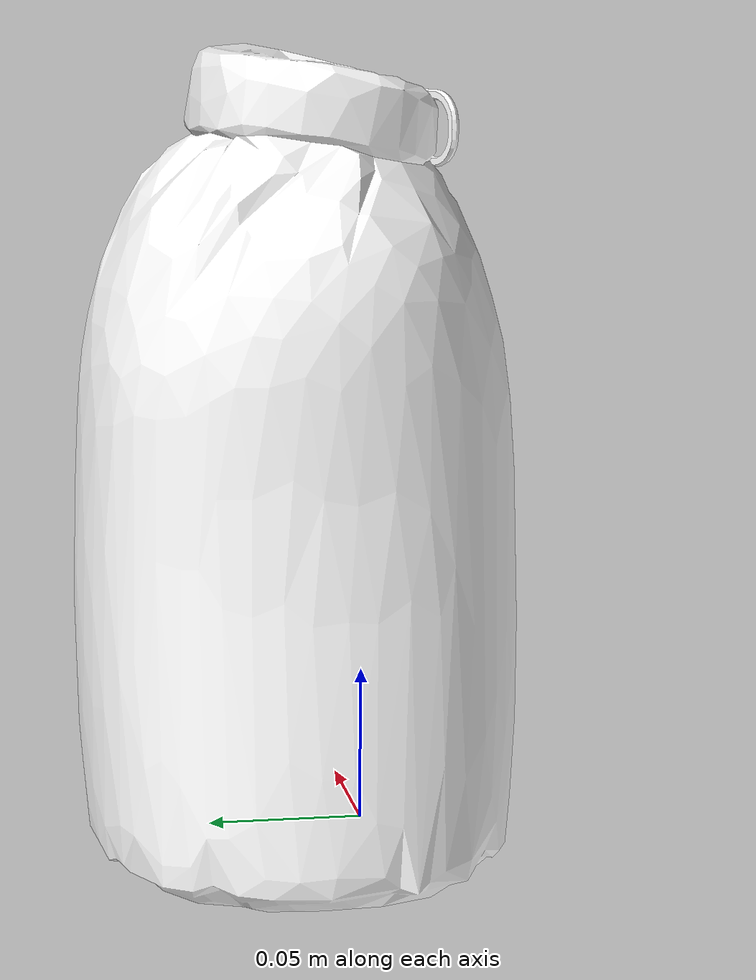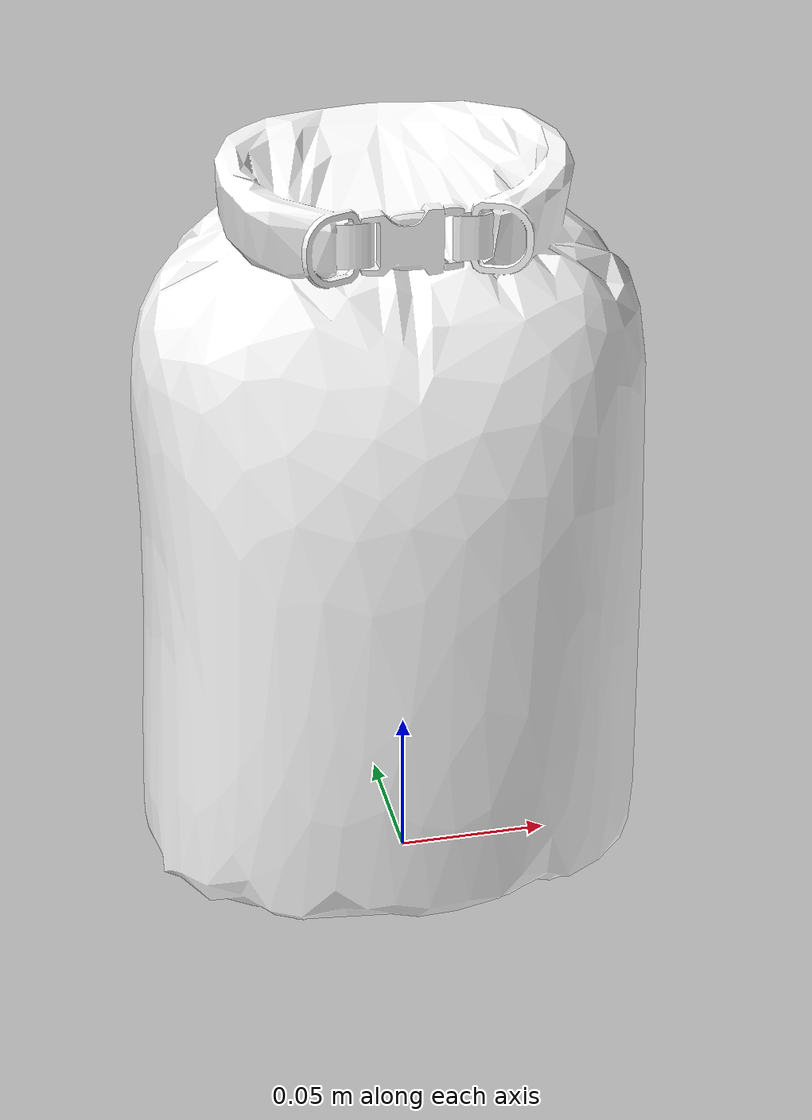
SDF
<?xml version='1.0' ?>
<sdf version="1.6">
    <model name="small_dry_bag">
        <static>false</static>
        <link name="link">
            <inertial>
                <pose>0 0.02 0.125 0 0 0</pose>
                <mass>1</mass>
                <inertia>
                    <ixx>0.00747007</ixx>
                    <ixy>0.0</ixy>
                    <ixz>0.0</ixz>
                    <iyy>0.00833630</iyy>
                    <iyz>0.0</iyz>
                    <izz>0.00414589</izz>
                </inertia>
            </inertial>
            <visual name="visual">
                <geometry>
                    <mesh>
                        <uri>meshes/smalldrybag.dae</uri>
                    </mesh>
                </geometry>
                <material>
                    <diffuse>1.0 1.0 1.0</diffuse>
                    <specular>1.0 1.0 1.0</specular>
                    <pbr>
                        <metal>
                            <albedo_map>materials/textures/SmallDryBag_Albedo.jpg</albedo_map>
                            <normal_map>materials/textures/SmallDryBag_Normal.jpg</normal_map>
                            <roughness_map>materials/textures/SmallDryBag_Roughness.jpg</roughness_map>
                        </metal>
                    </pbr>
                </material>
            </visual>
            <collision name="Cylinder001">
                <pose>-9.6187e-06 0.0238337 0.0945894 0.0 0.0 0.0</pose>
                <geometry>
                    <cylinder>
                        <length>0.217212</length>
                        <radius>0.0797048</radius>
                    </cylinder>
                </geometry>
            </collision>
            <collision name="Cylinder002">
                <pose>-9.62242e-06 0.019915 0.213525 0.170708 0.0 0.0</pose>
                <geometry>
                    <cylinder>
                        <length>0.0673358</length>
                        <radius>0.0557934</radius>
                    </cylinder>
                </geometry>
            </collision>
        </link>
    </model>
</sdf>
